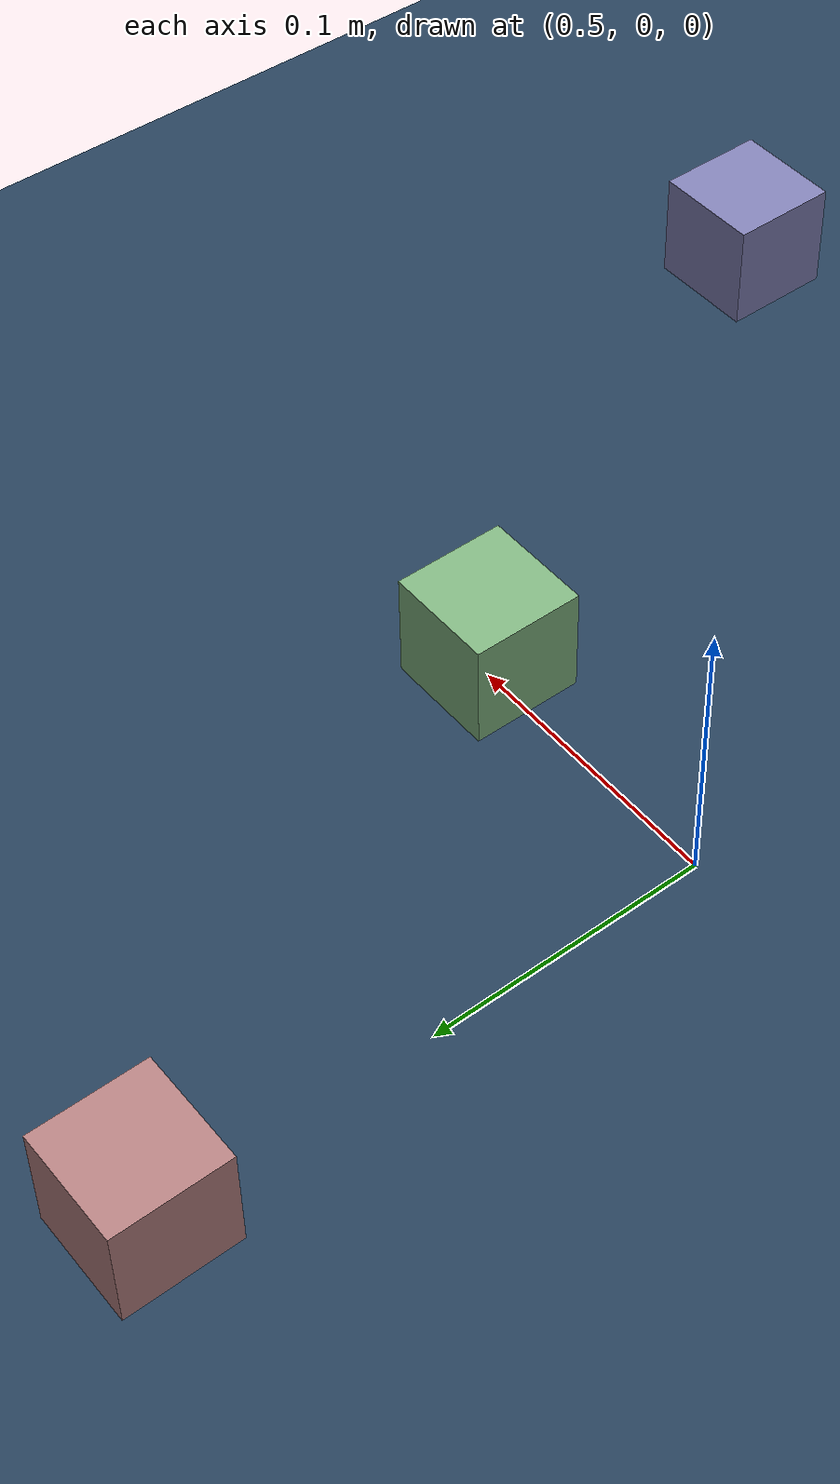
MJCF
<mujoco model="tidybot scene">
  <statistic center="0.25 0 0.6" extent="1.0" meansize="0.05"/>

  <visual>
    <headlight diffuse="0.6 0.6 0.6" ambient="0.1 0.1 0.1" specular="0 0 0"/>
    <rgba haze="0.15 0.25 0.35 1"/>
    <global azimuth="120" elevation="-20"/>
  </visual>

  <asset>
    <texture type="skybox" builtin="gradient" rgb1="0.3 0.5 0.7" rgb2="0 0 0" width="512" height="3072"/>
    <texture type="2d" name="groundplane" builtin="checker" mark="edge" rgb1="0.2 0.3 0.4" rgb2="0.1 0.2 0.3"
      markrgb="0.8 0.8 0.8" width="300" height="300"/>
    <material name="groundplane" texture="groundplane" texuniform="true" texrepeat="5 5"/>
  </asset>

  <worldbody>
    <light pos="0 0 1.5" directional="true"/>
    <geom name="floor" size="0 0 0.05" type="plane" material="groundplane"/>
    <body name="cube1" pos="0.6 0 0.02">
      <freejoint/>
      <geom type="box" size="0.02 0.02 0.02" rgba=".5 .7 .5 1" mass="0.1"/>
    </body>
    <body name="cube2" pos="0.5 0.2 0.02">
      <freejoint/>
      <geom type="box" size="0.02 0.02 0.02" rgba=".7 .5 .5 1" mass="0.1"/>
    </body>
    <body name="cube3" pos="0.7 -0.2 0.02">
      <freejoint/>
      <geom type="box" size="0.02 0.02 0.02" rgba=".5 .5 .7 1" mass="0.1"/>
    </body>

    <!-- Third-person overview camera for complete scene view -->
    <camera name="overview" pos="0.0 0.0 3.0" euler="1.0 0.0 0" fovy="42" resolution="640 480"/>
  </worldbody>
</mujoco>
